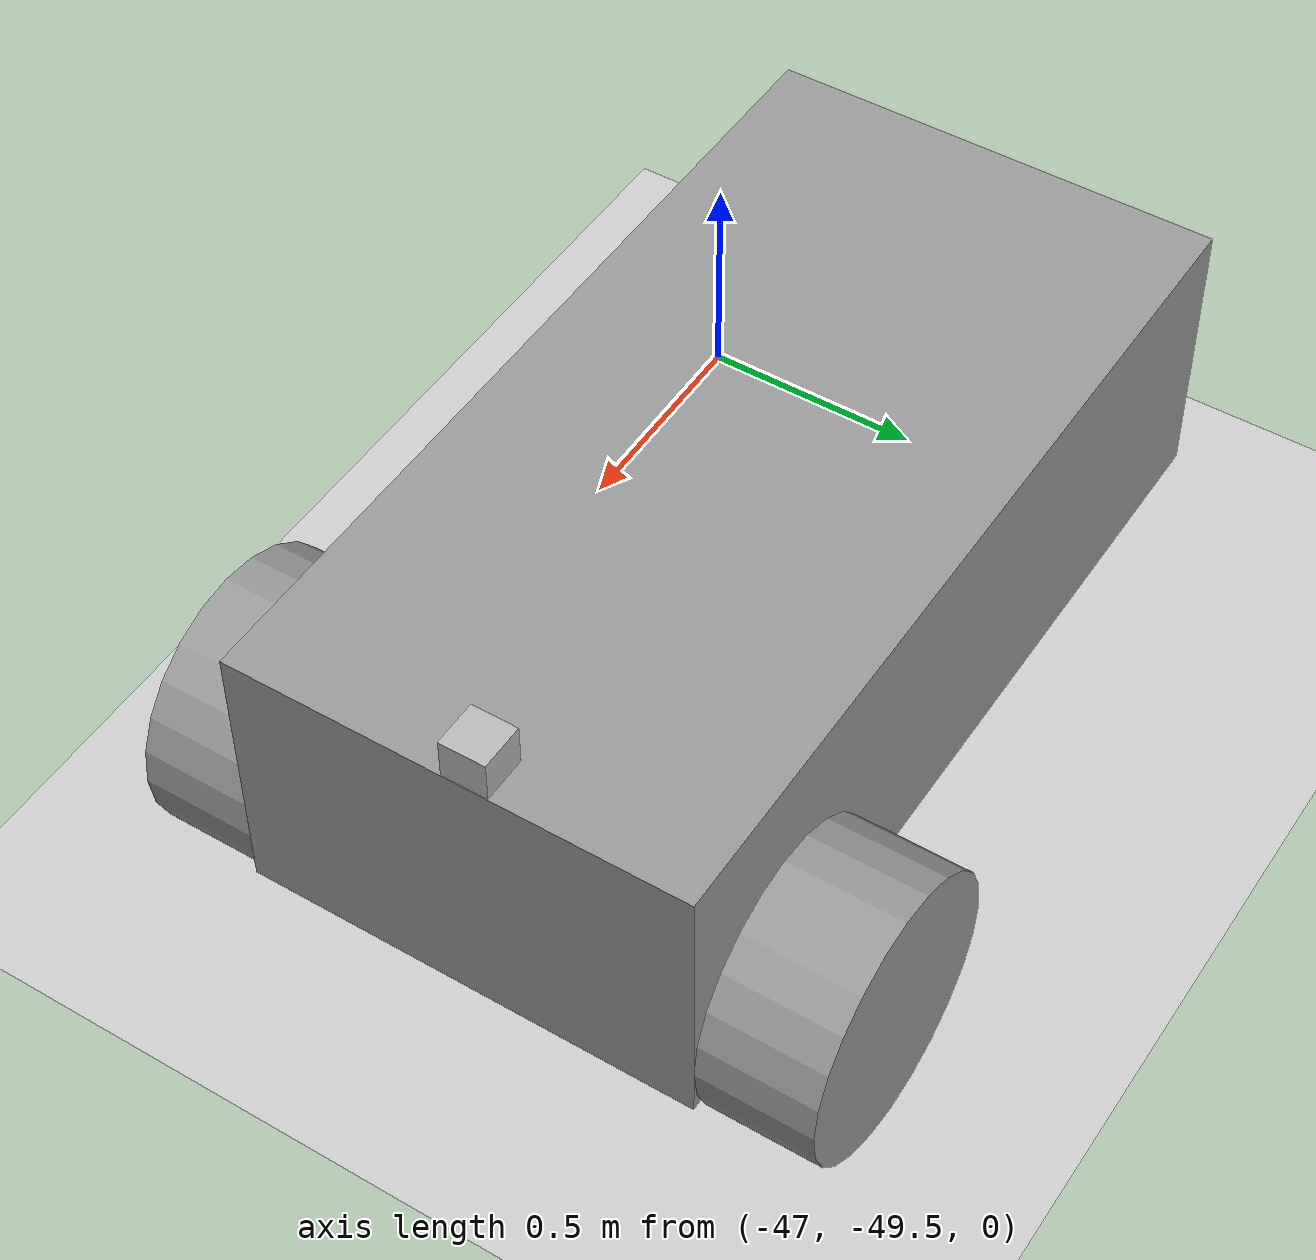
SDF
<sdf version="1.6">
 <world name="default">
  <light name="sun" type="directional">
   <pose>0 0 10 0 -0 0</pose>
   <diffuse>0.8 0.8 0.8 1</diffuse>
   <specular>0.1 0.1 0.1 1</specular>
   <attenuation>
    <range>1000</range>
    <constant>0.9</constant>
    <linear>0.01</linear>
    <quadratic>0.001</quadratic>
   </attenuation>
   <direction>-0.5 0.5 -1</direction>
  </light>
  <model name="ground_plane">
   <static>1</static>
   <link name="link">
    <collision name="collision">
     <geometry><plane><normal>0 0 1</normal><size>100 100</size></plane></geometry>
     <surface><friction><ode><mu>100</mu><mu2>50</mu2></ode></friction></surface>
    </collision>
    <visual name="visual">
     <cast_shadows>0</cast_shadows>
     <geometry><plane><normal>0 0 1</normal><size>100 100</size></plane></geometry>
     <material>
      <script><uri>file://media/materials/scripts/gazebo.material</uri><name>Gazebo/Grey</name></script>
     </material>
    </visual>
   </link>
  </model>
  <gravity>0 0 -9.8</gravity>
  <magnetic_field>6e-06 2.3e-05 -4.2e-05</magnetic_field>
  <atmosphere type="adiabatic"/>
  <physics name="default_physics" default="0" type="ode">
   <max_step_size>0.001</max_step_size>
   <real_time_factor>1</real_time_factor>
   <real_time_update_rate>1000</real_time_update_rate>
  </physics>
  <scene><ambient>0.4 0.4 0.4 1</ambient><background>0.7 0.7 0.7 1</background><shadows>1</shadows></scene>
  <spherical_coordinates>
   <surface_model>EARTH_WGS84</surface_model>
   <latitude_deg>0</latitude_deg>
   <longitude_deg>0</longitude_deg>
   <elevation>0</elevation>
   <heading_deg>0</heading_deg>
  </spherical_coordinates>
  <model name="MyCarBot">
   <link name="link_0">
    <pose>-0.30064 -0.00619 0.079104 0 -0 0</pose>
    <inertial>
     <mass>1.22899</mass>
     <inertia>
      <ixx>0.142914</ixx>
      <ixy>0</ixy>
      <ixz>0</ixz>
      <iyy>0.431709</iyy>
      <iyz>0</iyz>
      <izz>0.493628</izz>
     </inertia>
    </inertial>
    <visual name="visual">
     <geometry><box><size>1.95443 1 0.628837</size></box></geometry>
     <material>
      <lighting>1</lighting>
      <script><uri>file://media/materials/scripts/gazebo.material</uri><name>Gazebo/Grey</name></script>
      <ambient>0.3 0.3 0.3 1</ambient>
      <diffuse>0.7 0.7 0.7 1</diffuse>
      <specular>0.01 0.01 0.01 1</specular>
      <emissive>0 0 0 1</emissive>
      <shader type="vertex"><normal_map>__default__</normal_map></shader>
     </material>
    </visual>
    <collision name="collision">
     <geometry><box><size>1.95443 1 0.628837</size></box></geometry>
     <surface>
      <friction>
       <ode><mu>1</mu><mu2>1</mu2><fdir1>0 0 0</fdir1><slip1>0</slip1><slip2>0</slip2></ode>
       <torsional>
        <coefficient>1</coefficient>
        <patch_radius>0</patch_radius>
        <surface_radius>0</surface_radius>
        <use_patch_radius>1</use_patch_radius>
        <ode><slip>0</slip></ode>
       </torsional>
      </friction>
      <bounce><restitution_coefficient>0</restitution_coefficient><threshold>1e+06</threshold></bounce>
      <contact>
       <collide_without_contact>0</collide_without_contact>
       <collide_without_contact_bitmask>1</collide_without_contact_bitmask>
       <collide_bitmask>1</collide_bitmask>
       <ode>
        <soft_cfm>0</soft_cfm>
        <soft_erp>0.2</soft_erp>
        <kp>1e+13</kp>
        <kd>1</kd>
        <max_vel>0.01</max_vel>
        <min_depth>0</min_depth>
       </ode>
       <bullet>
        <split_impulse>1</split_impulse>
        <split_impulse_penetration_threshold>-0.01</split_impulse_penetration_threshold>
        <soft_cfm>0</soft_cfm>
        <soft_erp>0.2</soft_erp>
        <kp>1e+13</kp>
        <kd>1</kd>
       </bullet>
      </contact>
     </surface>
    </collision>
   </link>
   <link name="link_1">
    <pose>0.376578 -0.631219 -0.120896 1.5707 -0 0</pose>
    <inertial>
     <mass>1</mass>
     <inertia><ixx>0.145833</ixx><ixy>0</ixy><ixz>0</ixz><iyy>0.145833</iyy><iyz>0</iyz><izz>0.125</izz></inertia>
    </inertial>
    <visual name="visual">
     <geometry><cylinder><radius>0.3</radius><length>0.25</length></cylinder></geometry>
     <material>
      <lighting>1</lighting>
      <script><uri>file://media/materials/scripts/gazebo.material</uri><name>Gazebo/Grey</name></script>
      <ambient>0.3 0.3 0.3 1</ambient>
      <diffuse>0.7 0.7 0.7 1</diffuse>
      <specular>0.01 0.01 0.01 1</specular>
      <emissive>0 0 0 1</emissive>
      <shader type="vertex"><normal_map>__default__</normal_map></shader>
     </material>
    </visual>
    <collision name="collision">
     <geometry><cylinder><radius>0.3</radius><length>0.25</length></cylinder></geometry>
     <surface>
      <friction>
       <ode><mu>1</mu><mu2>1</mu2><fdir1>0 0 0</fdir1><slip1>0</slip1><slip2>0</slip2></ode>
       <torsional>
        <coefficient>1</coefficient>
        <patch_radius>0</patch_radius>
        <surface_radius>0</surface_radius>
        <use_patch_radius>1</use_patch_radius>
        <ode><slip>0</slip></ode>
       </torsional>
      </friction>
      <bounce><restitution_coefficient>0</restitution_coefficient><threshold>1e+06</threshold></bounce>
      <contact>
       <collide_without_contact>0</collide_without_contact>
       <collide_without_contact_bitmask>1</collide_without_contact_bitmask>
       <collide_bitmask>1</collide_bitmask>
       <ode>
        <soft_cfm>0</soft_cfm>
        <soft_erp>0.2</soft_erp>
        <kp>1e+13</kp>
        <kd>1</kd>
        <max_vel>0.01</max_vel>
        <min_depth>0</min_depth>
       </ode>
       <bullet>
        <split_impulse>1</split_impulse>
        <split_impulse_penetration_threshold>-0.01</split_impulse_penetration_threshold>
        <soft_cfm>0</soft_cfm>
        <soft_erp>0.2</soft_erp>
        <kp>1e+13</kp>
        <kd>1</kd>
       </bullet>
      </contact>
     </surface>
    </collision>
   </link>
   <link name="link_1_clone">
    <pose>0.376578 0.618839 -0.120896 1.5707 -0 0</pose>
    <inertial>
     <mass>1</mass>
     <inertia><ixx>0.145833</ixx><ixy>0</ixy><ixz>0</ixz><iyy>0.145833</iyy><iyz>0</iyz><izz>0.125</izz></inertia>
    </inertial>
    <visual name="visual">
     <geometry><cylinder><radius>0.3</radius><length>0.25</length></cylinder></geometry>
     <material>
      <lighting>1</lighting>
      <script><uri>file://media/materials/scripts/gazebo.material</uri><name>Gazebo/Grey</name></script>
      <ambient>0.3 0.3 0.3 1</ambient>
      <diffuse>0.7 0.7 0.7 1</diffuse>
      <specular>0.01 0.01 0.01 1</specular>
      <emissive>0 0 0 1</emissive>
      <shader type="vertex"><normal_map>__default__</normal_map></shader>
     </material>
    </visual>
    <collision name="collision">
     <geometry><cylinder><radius>0.3</radius><length>0.25</length></cylinder></geometry>
     <surface>
      <friction>
       <ode><mu>1</mu><mu2>1</mu2><fdir1>0 0 0</fdir1><slip1>0</slip1><slip2>0</slip2></ode>
       <torsional>
        <coefficient>1</coefficient>
        <patch_radius>0</patch_radius>
        <surface_radius>0</surface_radius>
        <use_patch_radius>1</use_patch_radius>
        <ode><slip>0</slip></ode>
       </torsional>
      </friction>
      <bounce><restitution_coefficient>0</restitution_coefficient><threshold>1e+06</threshold></bounce>
      <contact>
       <collide_without_contact>0</collide_without_contact>
       <collide_without_contact_bitmask>1</collide_without_contact_bitmask>
       <collide_bitmask>1</collide_bitmask>
       <ode>
        <soft_cfm>0</soft_cfm>
        <soft_erp>0.2</soft_erp>
        <kp>1e+13</kp>
        <kd>1</kd>
        <max_vel>0.01</max_vel>
        <min_depth>0</min_depth>
       </ode>
       <bullet>
        <split_impulse>1</split_impulse>
        <split_impulse_penetration_threshold>-0.01</split_impulse_penetration_threshold>
        <soft_cfm>0</soft_cfm>
        <soft_erp>0.2</soft_erp>
        <kp>1e+13</kp>
        <kd>1</kd>
       </bullet>
      </contact>
     </surface>
    </collision>
   </link>
   <link name="link_2">
    <pose>-1.07786 -0.00619 -0.220896 0 -0 0</pose>
    <inertial>
     <mass>1</mass>
     <inertia><ixx>0.1</ixx><ixy>0</ixy><ixz>0</ixz><iyy>0.1</iyy><iyz>0</iyz><izz>0.1</izz></inertia>
    </inertial>
    <visual name="visual">
     <geometry><sphere><radius>0.2</radius></sphere></geometry>
     <material>
      <lighting>1</lighting>
      <script><uri>file://media/materials/scripts/gazebo.material</uri><name>Gazebo/Grey</name></script>
      <ambient>0.3 0.3 0.3 1</ambient>
      <diffuse>0.7 0.7 0.7 1</diffuse>
      <specular>0.01 0.01 0.01 1</specular>
      <emissive>0 0 0 1</emissive>
      <shader type="vertex"><normal_map>__default__</normal_map></shader>
     </material>
    </visual>
    <collision name="collision">
     <geometry><sphere><radius>0.2</radius></sphere></geometry>
     <surface>
      <friction>
       <ode><mu>1</mu><mu2>1</mu2><fdir1>0 0 0</fdir1><slip1>0</slip1><slip2>0</slip2></ode>
       <torsional>
        <coefficient>1</coefficient>
        <patch_radius>0</patch_radius>
        <surface_radius>0</surface_radius>
        <use_patch_radius>1</use_patch_radius>
        <ode><slip>0</slip></ode>
       </torsional>
      </friction>
      <bounce><restitution_coefficient>0</restitution_coefficient><threshold>1e+06</threshold></bounce>
      <contact>
       <collide_without_contact>0</collide_without_contact>
       <collide_without_contact_bitmask>1</collide_without_contact_bitmask>
       <collide_bitmask>1</collide_bitmask>
       <ode>
        <soft_cfm>0</soft_cfm>
        <soft_erp>0.2</soft_erp>
        <kp>1e+13</kp>
        <kd>1</kd>
        <max_vel>0.01</max_vel>
        <min_depth>0</min_depth>
       </ode>
       <bullet>
        <split_impulse>1</split_impulse>
        <split_impulse_penetration_threshold>-0.01</split_impulse_penetration_threshold>
        <soft_cfm>0</soft_cfm>
        <soft_erp>0.2</soft_erp>
        <kp>1e+13</kp>
        <kd>1</kd>
       </bullet>
      </contact>
     </surface>
    </collision>
   </link>
   <model name="depth_camera">
    <link name="link">
     <pose>0 0 0.05 0 -0 0</pose>
     <inertial>
      <mass>0.1</mass>
      <inertia>
       <ixx>0.000166667</ixx>
       <iyy>0.000166667</iyy>
       <izz>0.000166667</izz>
       <ixy>0</ixy>
       <ixz>0</ixz>
       <iyz>0</iyz>
      </inertia>
     </inertial>
     <collision name="collision"><geometry><box><size>0.1 0.1 0.1</size></box></geometry></collision>
     <visual name="visual"><geometry><box><size>0.1 0.1 0.1</size></box></geometry></visual>
     <sensor name="camera" type="depth">
      <camera name="__default__">
       <horizontal_fov>1.047</horizontal_fov>
       <image><width>320</width><height>240</height></image>
       <clip><near>0.1</near><far>100</far></clip>
      </camera>
      <always_on>1</always_on>
      <update_rate>30</update_rate>
      <visualize>1</visualize>
     </sensor>
    </link>
    <pose>0.625342 0.024761 0.383586 0 -0 0</pose>
   </model>
   <joint name="link_0_JOINT_0" type="revolute">
    <parent>link_0</parent>
    <child>link_1_clone</child>
    <axis>
     <xyz>0 0 1</xyz>
     <use_parent_model_frame>0</use_parent_model_frame>
     <limit>
      <lower>-1.79769e+308</lower>
      <upper>1.79769e+308</upper>
      <effort>-1</effort>
      <velocity>-1</velocity>
     </limit>
     <dynamics>
      <spring_reference>0</spring_reference>
      <spring_stiffness>0</spring_stiffness>
      <damping>0</damping>
      <friction>0</friction>
     </dynamics>
    </axis>
    <physics>
     <ode><limit><cfm>0</cfm><erp>0.2</erp></limit><suspension><cfm>0</cfm><erp>0.2</erp></suspension></ode>
    </physics>
   </joint>
   <joint name="link_0_JOINT_1" type="revolute">
    <parent>link_0</parent>
    <child>link_1</child>
    <axis>
     <xyz>0 0 1</xyz>
     <use_parent_model_frame>0</use_parent_model_frame>
     <limit>
      <lower>-1.79769e+308</lower>
      <upper>1.79769e+308</upper>
      <effort>-1</effort>
      <velocity>-1</velocity>
     </limit>
     <dynamics>
      <spring_reference>0</spring_reference>
      <spring_stiffness>0</spring_stiffness>
      <damping>0</damping>
      <friction>0</friction>
     </dynamics>
    </axis>
    <physics>
     <ode><limit><cfm>0</cfm><erp>0.2</erp></limit><suspension><cfm>0</cfm><erp>0.2</erp></suspension></ode>
    </physics>
   </joint>
   <joint name="link_0_JOINT_2" type="ball">
    <parent>link_0</parent>
    <child>link_2</child>
    <physics>
     <ode><limit><cfm>0</cfm><erp>0.2</erp></limit><suspension><cfm>0</cfm><erp>0.2</erp></suspension></ode>
    </physics>
   </joint>
   <joint name="link_0_JOINT_3" type="fixed">
    <parent>link_0</parent>
    <child>depth_camera::link</child>
    <physics>
     <ode><limit><cfm>0</cfm><erp>0.2</erp></limit><suspension><cfm>0</cfm><erp>0.2</erp></suspension></ode>
    </physics>
   </joint>
   <static>0</static>
   <plugin name="follower" filename="libFollowerPlugin.so"/>
   <pose>-45.8325 -48.8952 0.418999 0 -0 0</pose>
  </model>
 </world>
</sdf>
